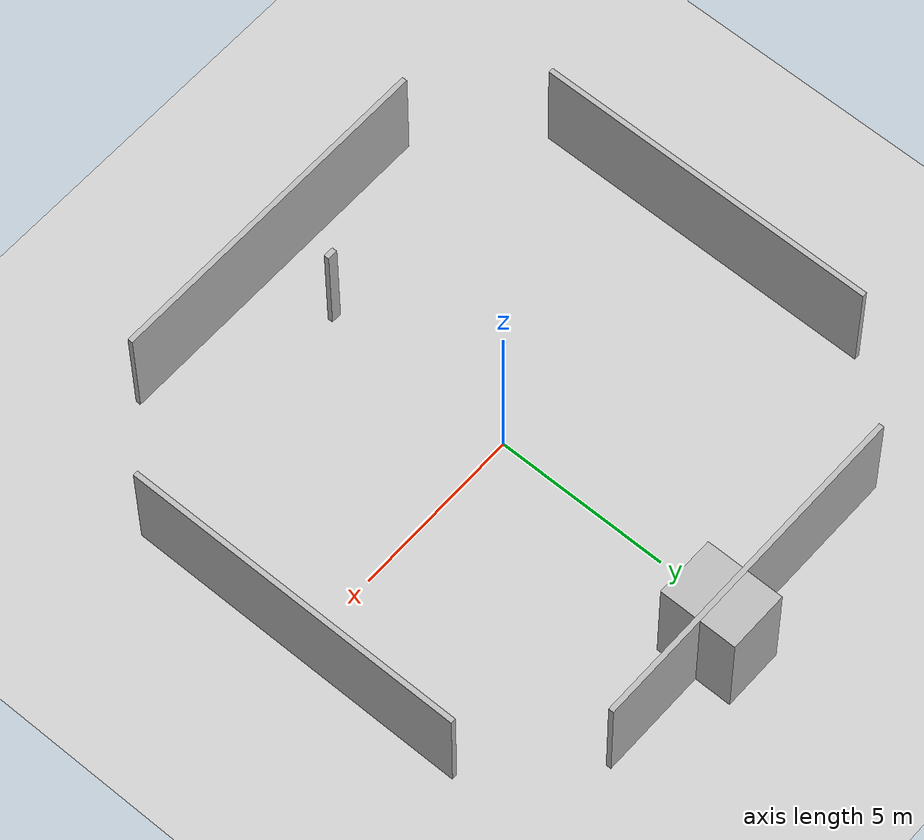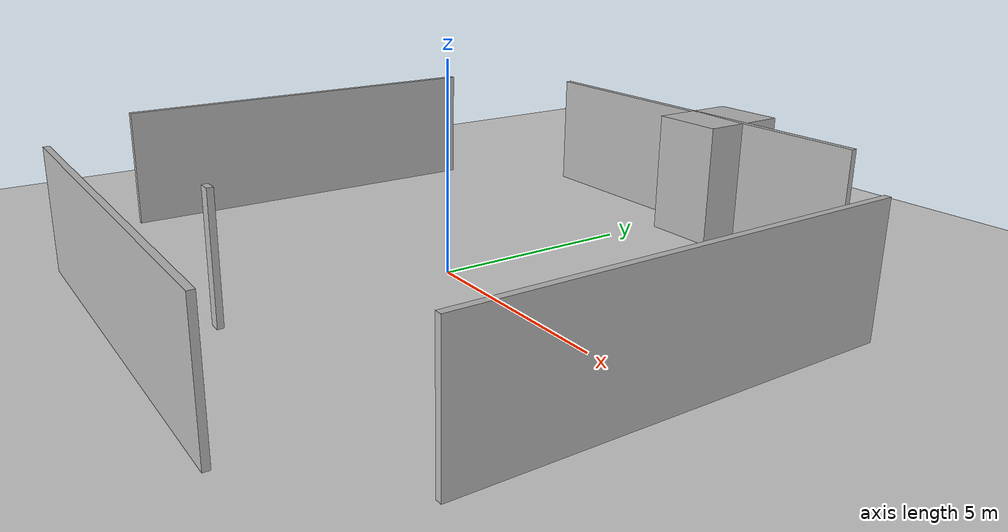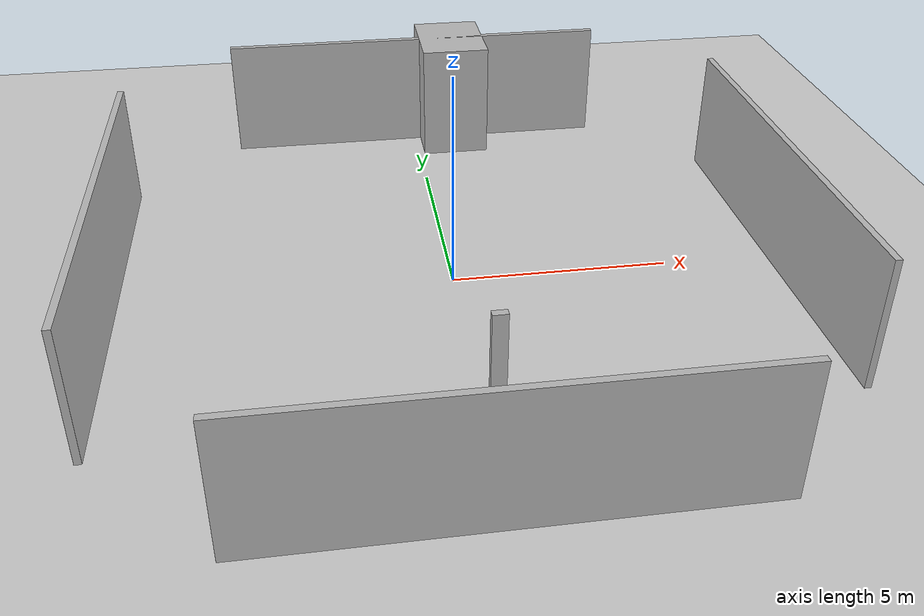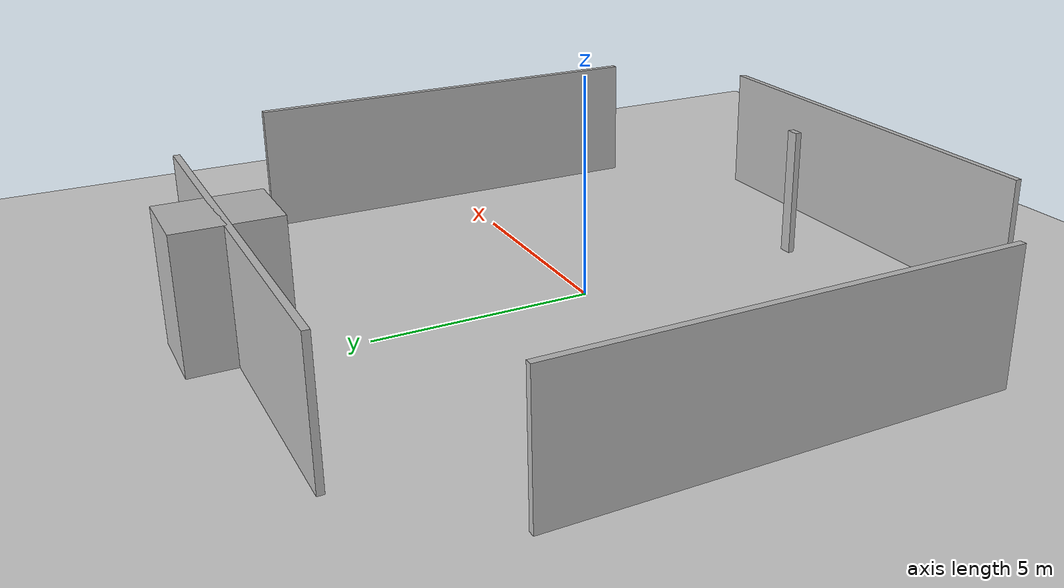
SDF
<?xml version="1.0" ?>
<sdf version="1.6">
  <world name="clean_office_stub">

    <include>
      <uri>model://ground_plane</uri>
    </include>
    <include>
      <uri>model://sun</uri>
    </include>

    <!-- Back wall with stub -->
    <model name="wall_back">
    <static>true</static>
    <pose>0 7.575 0 0 0 0</pose>
    <link name="link">
        <!-- Solid back wall -->
        <visual name="vBack"><pose>0 0 1.5 0 0 0</pose>
        <geometry><box><size>10.0 0.15 3.0</size></box></geometry>
        </visual>
        <collision name="cBack"><pose>0 0 1.5 0 0 0</pose>
        <geometry><box><size>10.0 0.15 3.0</size></box></geometry>
        </collision>

        <!-- Stub protrusion at w,d,h-->
        <visual name="vStub"><pose>1.0 0 1.5 0 0 0</pose>
        <geometry><box><size>1.75 2.25 3.0</size></box></geometry>
        </visual>
        <collision name="cStub"><pose>1.0 0 1.5 0 0 0</pose>
        <geometry><box><size>1.75 2.25 3.0</size></box></geometry>
        </collision>
    </link>
    </model>

    <!-- Front wall -->
    <model name="wall_front">
      <static>true</static>
      <pose>0 -7.575 0 0 0 0</pose>
      <link name="link">
        <visual name="vFront"><pose>0 0 1.5 0 0 0</pose>
          <geometry><box><size>10.0 0.15 3.0</size></box></geometry>
        </visual>
        <collision name="cFront"><pose>0 0 1.5 0 0 0</pose>
          <geometry><box><size>10.0 0.15 3.0</size></box></geometry>
        </collision>
           <!-- Stub protrusion -->
        <visual name="vStub"><pose>0 2.0 1.5 0 0 0</pose>
          <geometry><box><size>0.3 .15 3.0</size></box></geometry>
        </visual>
        <collision name="cStub"><pose>0 2.0 1.5 0 0 0</pose>
          <geometry><box><size>0.3 .15 3.0</size></box></geometry>
        </collision>

      </link>
    </model>

    <!-- Right wall with stub -->
    <model name="wall_right">
      <static>true</static>
      <pose>7.575 0 0 0 0 0</pose>
      <link name="link">
        <visual name="vRight"><pose>0 0 1.5 0 0 0</pose>
          <geometry><box><size>0.15 10.0 3.0</size></box></geometry>
        </visual>
        <collision name="cRight"><pose>0 0 1.5 0 0 0</pose>
          <geometry><box><size>0.15 10.0 3.0</size></box></geometry>
        </collision>
      </link>
    </model>

    <!-- Left wall -->
    <model name="wall_left">
      <static>true</static>
      <pose>-7.575 0 0 0 0 0</pose>
      <link name="link">
        <visual name="vLeft"><pose>0 0 1.5 0 0 0</pose>
          <geometry><box><size>0.15 10.0 3.0</size></box></geometry>
        </visual>
        <collision name="cLeft"><pose>0 0 1.5 0 0 0</pose>
          <geometry><box><size>0.15 10.0 3.0</size></box></geometry>
        </collision>
      </link>
    </model>

  </world>
</sdf>
